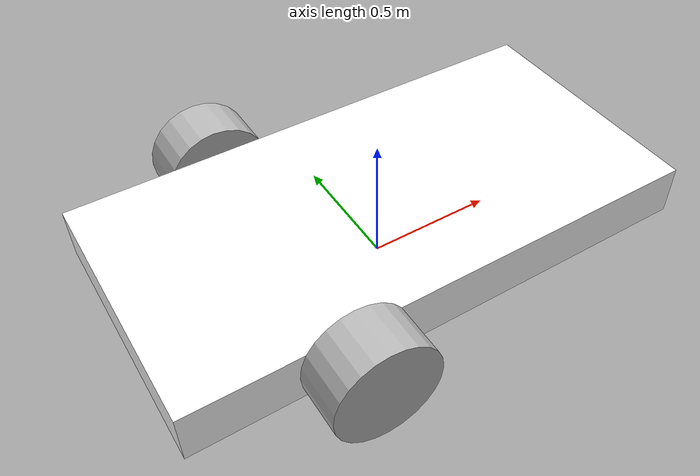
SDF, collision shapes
<?xml version="1.0"?>
<sdf version="1.6">
  <model name='rover_differential_xl'>
    <!--Links-->
    <link name='base_link'>
      <pose relative_to='__model__'>0 0 0.2 0 0 0</pose>
      <inertial>
        <mass>40.0</mass>
        <pose>-0.4 0 0 0 0 0</pose> <!-- Center of mass offset to wheel axis-->
        <inertia>
          <ixx>0.966666656</ixx>
          <ixy>0.0</ixy>
          <ixz>0.0</ixz>
          <iyy>3.466666656</iyy>
          <iyz>0.0</iyz>
          <izz>4.166666656</izz>
        </inertia>
      </inertial>
      <visual name='visual'>
        <pose>0 0 -0.1 0 0 0</pose>
        <geometry>
          <mesh>
            <uri>model://rover_differential_xl/meshes/rover_differential_base.dae</uri>
            <scale>2 2 2</scale>
          </mesh>
        </geometry>
      </visual>
      <collision name='collision'>
        <geometry>
          <box>
            <size>2 1 0.2</size>
          </box>
        </geometry>
      </collision>

      <visual name='arucotag_visual'>
        <pose>0.5 0 0.101 0 0 0</pose>
        <geometry>
          <plane>
            <normal>0 0 1</normal>
            <size>0.5 0.5</size>
          </plane>
        </geometry>
        <material>
          <diffuse>1 1 1 1</diffuse>
          <specular>0.4 0.4 0.4 1</specular>
          <pbr>
            <metal>
              <albedo_map>model://arucotag/arucotag.png</albedo_map>
            </metal>
          </pbr>
        </material>
      </visual>

      <!--Sensors-->
      <sensor name="air_pressure_sensor" type="air_pressure">
        <gz_frame_id>base_link</gz_frame_id>
        <always_on>1</always_on>
        <update_rate>50</update_rate>
        <air_pressure>
          <!-- Noise modeled after BMP390 -->
          <pressure>
            <noise type="gaussian">
              <mean>0</mean>
              <stddev>3</stddev>
            </noise>
          </pressure>
        </air_pressure>
      </sensor>
      <sensor name="magnetometer_sensor" type="magnetometer">
        <gz_frame_id>base_link</gz_frame_id>
        <always_on>1</always_on>
        <update_rate>100</update_rate>
        <magnetometer>
          <!-- TODO: update to fix units and coordinate system when we move past Harmonic -->
          <!-- See https://github.com/gazebosim/gz-sim/pull/2460 -->
          <!-- 3mgauss RMS: NOTE: noise is in tesla but sensor reports data in gauss -->
          <!-- Noise modeled after IIS2MDC -->
          <x>
            <noise type="gaussian">
              <stddev>0.0001</stddev>
            </noise>
          </x>
          <y>
            <noise type="gaussian">
              <stddev>0.0001</stddev>
            </noise>
          </y>
          <z>
            <noise type="gaussian">
              <stddev>0.0001</stddev>
            </noise>
          </z>
        </magnetometer>
      </sensor>
      <sensor name="imu_sensor" type="imu">
        <gz_frame_id>base_link</gz_frame_id>
        <always_on>1</always_on>
        <update_rate>250</update_rate>
        <imu>
          <angular_velocity>
            <!-- Noise modeled after IIM42653 -->
            <!-- 0.05 deg/s converted to rad/s -->
            <x>
              <noise type="gaussian">
                <mean>0.0</mean>
                <stddev>0.0008726646</stddev>
              </noise>
            </x>
            <y>
              <noise type="gaussian">
                <mean>0.0</mean>
                <stddev>0.0008726646</stddev>
              </noise>
            </y>
            <z>
              <noise type="gaussian">
                <mean>0.0</mean>
                <stddev>0.0008726646</stddev>
              </noise>
            </z>
          </angular_velocity>
          <linear_acceleration>
            <!-- Noise modeled after IIM42653 -->
            <!-- X & Y axis: 0.65 mg-rms converted to m/ss -->
            <x>
              <noise type="gaussian">
                <mean>0.0</mean>
                <stddev>0.00637</stddev>
              </noise>
            </x>
            <y>
              <noise type="gaussian">
                <mean>0.0</mean>
                <stddev>0.00637</stddev>
              </noise>
            </y>
            <!-- Z axis: 0.70 mg-rms converted to m/ss-->
            <z>
              <noise type="gaussian">
                <mean>0.0</mean>
                <stddev>0.00686</stddev>
              </noise>
            </z>
          </linear_acceleration>
        </imu>
      </sensor>
      <sensor name="navsat_sensor" type="navsat">
        <gz_frame_id>base_link</gz_frame_id>
        <always_on>1</always_on>
        <update_rate>30</update_rate>
      </sensor>
    </link>

    <link name='wheel_rear_left_link'>
      <pose relative_to="base_link">-0.4 0.6 0 -1.5707 0 0</pose>
      <inertial>
        <mass>4.0</mass>
        <inertia>
          <ixx>0.025833344</ixx>
          <ixy>0</ixy>
          <ixz>0</ixz>
          <iyy>0.025833344</iyy>
          <iyz>0</iyz>
          <izz>0.045</izz>
        </inertia>
      </inertial>
      <visual name='visual'>
        <pose>0 0 0 0 0 0</pose>
        <geometry>
          <mesh>
            <uri>model://rover_differential_xl/meshes/rover_differential_wheel.dae</uri>
            <scale>2 2 2</scale>
          </mesh>
        </geometry>
      </visual>
      <collision name='collision'>
        <geometry>
          <cylinder>
            <radius>0.2</radius>
            <length>0.2</length>
          </cylinder>
        </geometry>
        <surface>
          <friction>
            <ode>
              <mu>1.0</mu>
              <mu2>1.0</mu2>
              <fdir1>1 0 0</fdir1>
              <slip1>0.0</slip1>
              <slip2>0.0</slip2>
            </ode>
          </friction>
        </surface>
      </collision>
    </link>

    <link name='wheel_rear_right_link'>
      <pose relative_to="base_link">-0.4 -0.6 0 -1.5707 0 0</pose>
      <inertial>
        <mass>4.0</mass>
        <inertia>
          <ixx>0.025833344</ixx>
          <ixy>0</ixy>
          <ixz>0</ixz>
          <iyy>0.025833344</iyy>
          <iyz>0</iyz>
          <izz>0.045</izz>
        </inertia>
      </inertial>
      <visual name='visual'>
        <pose>0 0 0 0 0 0</pose>
        <geometry>
          <mesh>
            <uri>model://rover_differential_xl/meshes/rover_differential_wheel.dae</uri>
            <scale>2 2 2</scale>
          </mesh>
        </geometry>
      </visual>
      <collision name='collision'>
        <geometry>
          <cylinder>
            <radius>0.2</radius>
            <length>0.2</length>
          </cylinder>
        </geometry>
        <surface>
          <friction>
            <ode>
              <mu>1.0</mu>
              <mu2>1.0</mu2>
              <fdir1>1 0 0</fdir1>
              <slip1>0.0</slip1>
              <slip2>0.0</slip2>
            </ode>
          </friction>
        </surface>
      </collision>
    </link>

    <link name='cast_wheel_front_link'>
      <pose relative_to="base_link">0.5 0 -0.05 -1.5707 0 0</pose>
      <inertial>
        <mass>8</mass>
        <inertia>
          <ixx>0.512</ixx>
          <ixy>0</ixy>
          <ixz>0</ixz>
          <iyy>0.512</iyy>
          <iyz>0</iyz>
          <izz>0.512</izz>
        </inertia>
      </inertial>
      <visual name='visual'>
        <geometry>
          <sphere>
            <radius>0.15</radius>
          </sphere>
        </geometry>
        <material>
          <ambient>0 0 0 1</ambient>
          <diffuse>0 0 0 1</diffuse>
          <specular>0 0 0 0</specular>
          <emissive>0 0 0 1</emissive>
        </material>
      </visual>
      <collision name='collision'>
        <geometry>
          <sphere>
            <radius>0.15</radius>
          </sphere>
        </geometry>
        <surface>
          <friction>
            <ode>
              <mu>0</mu>
              <mu2>0</mu2>
              <fdir1>1 0 0</fdir1>
            </ode>
          </friction>
        </surface>
      </collision>
    </link>

    <link name='cast_wheel_rear_link'>
      <pose relative_to="base_link">-0.6 0 -0.05 -1.5707 0 0</pose>
      <inertial>
        <mass>8</mass>
        <inertia>
          <ixx>0.512</ixx>
          <ixy>0</ixy>
          <ixz>0</ixz>
          <iyy>0.512</iyy>
          <iyz>0</iyz>
          <izz>0.512</izz>
        </inertia>
      </inertial>
      <visual name='visual'>
        <geometry>
          <sphere>
            <radius>0.15</radius>
          </sphere>
        </geometry>
        <material>
          <ambient>0 0 0 1</ambient>
          <diffuse>0 0 0 1</diffuse>
          <specular>0 0 0 0</specular>
          <emissive>0 0 0 1</emissive>
        </material>
      </visual>
      <collision name='collision'>
        <geometry>
          <sphere>
            <radius>0.15</radius>
          </sphere>
        </geometry>
        <surface>
          <friction>
            <ode>
              <mu>0</mu>
              <mu2>0</mu2>
              <fdir1>1 0 0</fdir1>
            </ode>
          </friction>
        </surface>
      </collision>
    </link>

    <!-- Joints -->
    <joint name='wheel_rear_left_joint' type='revolute'>
      <pose relative_to='wheel_rear_left_link' />
      <parent>base_link</parent>
      <child>wheel_rear_left_link</child>
      <axis>
        <xyz expressed_in='__model__'>0 1 0</xyz>
      </axis>
    </joint>

    <joint name='wheel_rear_right_joint' type='revolute'>
      <pose relative_to='wheel_rear_right_link' />
      <parent>base_link</parent>
      <child>wheel_rear_right_link</child>
      <axis>
        <xyz expressed_in='__model__'>0 1 0</xyz>
      </axis>
    </joint>

    <joint name='cast_wheel_front_joint' type='ball'>
      <pose relative_to='cast_wheel_front_link' />
      <parent>base_link</parent>
      <child>cast_wheel_front_link</child>
    </joint>

    <joint name='cast_wheel_rear_link' type='ball'>
      <pose relative_to='cast_wheel_rear_link' />
      <parent>base_link</parent>
      <child>cast_wheel_rear_link</child>
    </joint>

    <!--Plugins-->
    <plugin filename="gz-sim-joint-controller-system" name="gz::sim::systems::JointController">
      <joint_name>wheel_rear_left_joint</joint_name>
      <sub_topic>command/motor_speed</sub_topic>
      <control_type>velocity</control_type>
      <use_actuator_msg>true</use_actuator_msg>
      <actuator_number>1</actuator_number>
    </plugin>

    <plugin filename="gz-sim-joint-controller-system" name="gz::sim::systems::JointController">
      <joint_name>wheel_rear_right_joint</joint_name>
      <sub_topic>command/motor_speed</sub_topic>
      <control_type>velocity</control_type>
      <use_actuator_msg>true</use_actuator_msg>
      <actuator_number>0</actuator_number>
    </plugin>

    <plugin filename="gz-sim-joint-state-publisher-system"
      name="gz::sim::systems::JointStatePublisher">
      <joint_name>wheel_rear_left_joint</joint_name>
      <joint_name>wheel_rear_right_joint</joint_name>
    </plugin>
  </model>
</sdf>
